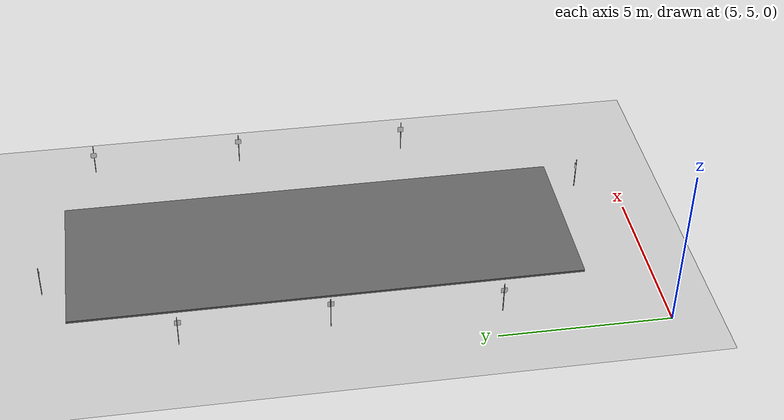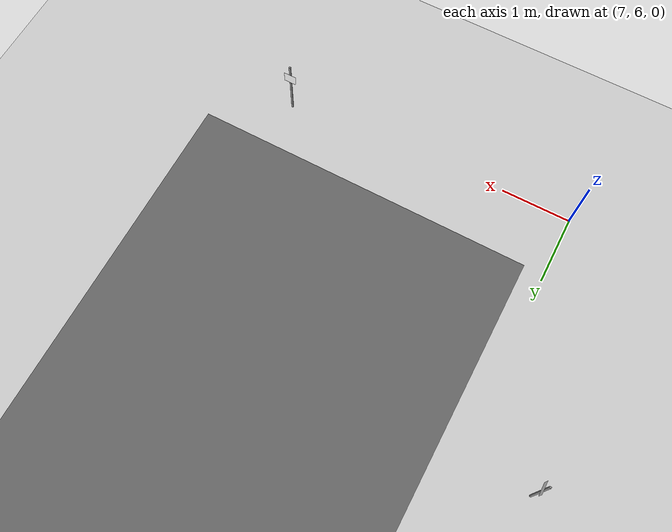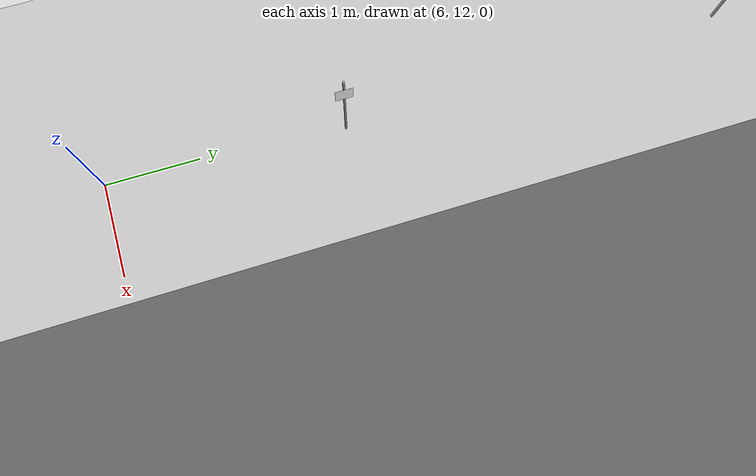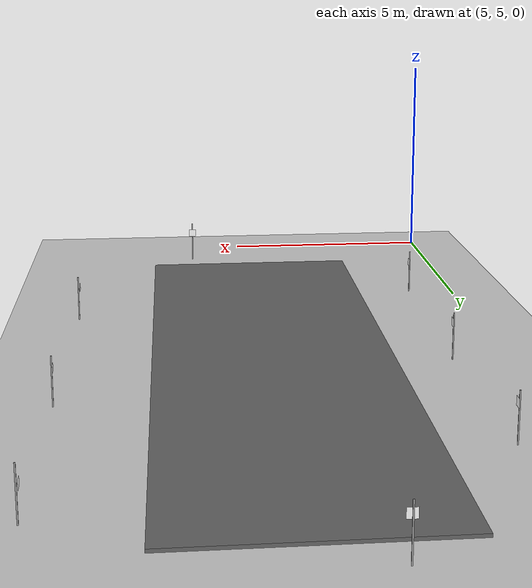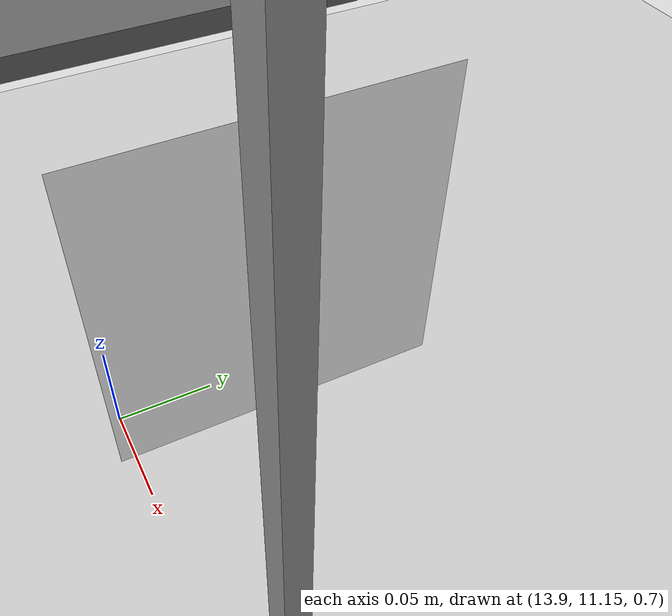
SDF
<sdf version="1.6">
 <world name="default">
  <light name="sun" type="directional">
   <pose>0 0 10 0 -0 0</pose>
   <diffuse>0.8 0.8 0.8 1</diffuse>
   <specular>0.1 0.1 0.1 1</specular>
   <attenuation>
    <range>1000</range>
    <constant>0.9</constant>
    <linear>0.01</linear>
    <quadratic>0.001</quadratic>
   </attenuation>
   <direction>-0.5 0.5 -1</direction>
  </light>
  <model name="ground_plane">
   <static>1</static>
   <link name="link">
    <collision name="collision">
     <geometry><plane><normal>0 0 1</normal><size>100 100</size></plane></geometry>
     <surface><friction><ode><mu>100</mu><mu2>50</mu2></ode></friction></surface>
    </collision>
    <visual name="visual">
     <cast_shadows>0</cast_shadows>
     <geometry><plane><normal>0 0 1</normal><size>100 100</size></plane></geometry>
     <material>
      <script><uri>file://media/materials/scripts/gazebo.material</uri><name>Gazebo/Grey</name></script>
     </material>
    </visual>
   </link>
  </model>
  <gravity>0 0 -9.8</gravity>
  <magnetic_field>6e-06 2.3e-05 -4.2e-05</magnetic_field>
  <atmosphere type="adiabatic"/>
  <physics name="default_physics" default="0" type="ode">
   <max_step_size>0.001</max_step_size>
   <real_time_factor>1</real_time_factor>
   <real_time_update_rate>1000</real_time_update_rate>
  </physics>
  <scene><ambient>0.4 0.4 0.4 1</ambient><background>0.7 0.7 0.7 1</background><shadows>1</shadows></scene>
  <spherical_coordinates>
   <surface_model>EARTH_WGS84</surface_model>
   <latitude_deg>0</latitude_deg>
   <longitude_deg>0</longitude_deg>
   <elevation>0</elevation>
   <heading_deg>0</heading_deg>
  </spherical_coordinates>
  <model name="aruco_visual_marker_0">
   <link name="marker">
    <visual name="visual">
     <geometry><box><size>0.1778 0.1778 1e-05</size></box></geometry>
     <material>
      <script>
       <uri>model://aruco_visual_marker_0/materials/scripts</uri>
       <uri>model://aruco_visual_marker_0/materials/textures</uri>
       <name>ArucoVisualMarker0/Marker</name>
      </script>
      <ambient>1 1 1 1</ambient>
      <diffuse>1 1 1 1</diffuse>
      <specular>0 0 0 1</specular>
      <emissive>1 1 1 0</emissive>
      <shader type="vertex"><normal_map>__default__</normal_map></shader>
     </material>
    </visual>
    <collision name="collision"><geometry><box><size>0.1778 0.1778 1e-05</size></box></geometry></collision>
   </link>
   <link name="marker_pad">
    <pose frame="marker">0 0 -1e-05 0 -0 0</pose>
    <visual name="visual">
     <geometry><box><size>1e-05 1e-05 1e-05</size></box></geometry>
     <material>
      <lighting>1</lighting>
      <script><uri>file://media/materials/scripts/gazebo.material</uri><name>Gazebo/White</name></script>
      <ambient>0.3 0.3 0.3 1</ambient>
      <diffuse>0.7 0.7 0.7 1</diffuse>
      <specular>0.01 0.01 0.01 1</specular>
      <emissive>1 1 1 0</emissive>
      <shader type="vertex"><normal_map>__default__</normal_map></shader>
     </material>
    </visual>
    <collision name="collision"><geometry><box><size>0.1778 0.1778 1e-05</size></box></geometry></collision>
   </link>
   <joint name="marker_JOINT_marker_pad" type="revolute">
    <parent>marker</parent>
    <child>marker_pad</child>
    <axis>
     <xyz>0 0 1</xyz>
     <limit><upper>0</upper><lower>0</lower></limit>
     <use_parent_model_frame>0</use_parent_model_frame>
     <dynamics><spring_reference>0</spring_reference><spring_stiffness>0</spring_stiffness></dynamics>
    </axis>
   </joint>
   <static>1</static>
   <pose>11.2803 6.2198 0.744645 1.57079 -1.57079 3.14159</pose>
  </model>
  <model name="aruco_visual_marker_1">
   <link name="marker">
    <visual name="visual">
     <geometry><box><size>0.1778 0.1778 1e-05</size></box></geometry>
     <material>
      <script>
       <uri>model://aruco_visual_marker_1/materials/scripts</uri>
       <uri>model://aruco_visual_marker_1/materials/textures</uri>
       <name>ArucoVisualMarker1/Marker</name>
      </script>
      <ambient>1 1 1 1</ambient>
      <diffuse>1 1 1 1</diffuse>
      <specular>0 0 0 1</specular>
      <emissive>1 1 1 0</emissive>
      <shader type="vertex"><normal_map>__default__</normal_map></shader>
     </material>
    </visual>
    <collision name="collision"><geometry><box><size>0.1778 0.1778 1e-05</size></box></geometry></collision>
   </link>
   <link name="marker_pad">
    <pose frame="marker">0 0 -1e-05 0 -0 0</pose>
    <visual name="visual">
     <geometry><box><size>1e-05 1e-05 1e-05</size></box></geometry>
     <material>
      <lighting>1</lighting>
      <script><uri>file://media/materials/scripts/gazebo.material</uri><name>Gazebo/White</name></script>
      <ambient>0.3 0.3 0.3 1</ambient>
      <diffuse>0.7 0.7 0.7 1</diffuse>
      <specular>0.01 0.01 0.01 1</specular>
      <emissive>1 1 1 0</emissive>
      <shader type="vertex"><normal_map>__default__</normal_map></shader>
     </material>
    </visual>
    <collision name="collision"><geometry><box><size>0.1778 0.1778 1e-05</size></box></geometry></collision>
   </link>
   <joint name="marker_JOINT_marker_pad" type="revolute">
    <parent>marker</parent>
    <child>marker_pad</child>
    <axis>
     <xyz>0 0 1</xyz>
     <limit><upper>0</upper><lower>0</lower></limit>
     <use_parent_model_frame>0</use_parent_model_frame>
     <dynamics><spring_reference>0</spring_reference><spring_stiffness>0</spring_stiffness></dynamics>
    </axis>
   </joint>
   <static>1</static>
   <pose>13.9216 11.2318 0.783528 -3.14159 -1.57079 -3.14159</pose>
  </model>
  <model name="aruco_visual_marker_2">
   <link name="marker">
    <visual name="visual">
     <geometry><box><size>0.1778 0.1778 1e-05</size></box></geometry>
     <material>
      <script>
       <uri>model://aruco_visual_marker_2/materials/scripts</uri>
       <uri>model://aruco_visual_marker_2/materials/textures</uri>
       <name>ArucoVisualMarker2/Marker</name>
      </script>
      <ambient>1 1 1 1</ambient>
      <diffuse>1 1 1 1</diffuse>
      <specular>0 0 0 1</specular>
      <emissive>1 1 1 0</emissive>
      <shader type="vertex"><normal_map>__default__</normal_map></shader>
     </material>
    </visual>
    <collision name="collision"><geometry><box><size>0.1778 0.1778 1e-05</size></box></geometry></collision>
   </link>
   <link name="marker_pad">
    <pose frame="marker">0 0 -1e-05 0 -0 0</pose>
    <visual name="visual">
     <geometry><box><size>1e-05 1e-05 1e-05</size></box></geometry>
     <material>
      <lighting>1</lighting>
      <script><uri>file://media/materials/scripts/gazebo.material</uri><name>Gazebo/White</name></script>
      <ambient>0.3 0.3 0.3 1</ambient>
      <diffuse>0.7 0.7 0.7 1</diffuse>
      <specular>0.01 0.01 0.01 1</specular>
      <emissive>1 1 1 0</emissive>
      <shader type="vertex"><normal_map>__default__</normal_map></shader>
     </material>
    </visual>
    <collision name="collision"><geometry><box><size>0.1778 0.1778 1e-05</size></box></geometry></collision>
   </link>
   <joint name="marker_JOINT_marker_pad" type="revolute">
    <parent>marker</parent>
    <child>marker_pad</child>
    <axis>
     <xyz>0 0 1</xyz>
     <limit><upper>0</upper><lower>0</lower></limit>
     <use_parent_model_frame>0</use_parent_model_frame>
     <dynamics><spring_reference>0</spring_reference><spring_stiffness>0</spring_stiffness></dynamics>
    </axis>
   </joint>
   <static>1</static>
   <pose>6.13172 14.532 0.803579 -3e-06 -1.57079 3.14159</pose>
  </model>
  <model name="aruco_visual_marker_3">
   <link name="marker">
    <visual name="visual">
     <geometry><box><size>0.1778 0.1778 1e-05</size></box></geometry>
     <material>
      <script>
       <uri>model://aruco_visual_marker_3/materials/scripts</uri>
       <uri>model://aruco_visual_marker_3/materials/textures</uri>
       <name>ArucoVisualMarker3/Marker</name>
      </script>
      <ambient>1 1 1 1</ambient>
      <diffuse>1 1 1 1</diffuse>
      <specular>0 0 0 1</specular>
      <emissive>1 1 1 0</emissive>
      <shader type="vertex"><normal_map>__default__</normal_map></shader>
     </material>
    </visual>
    <collision name="collision"><geometry><box><size>0.1778 0.1778 1e-05</size></box></geometry></collision>
   </link>
   <link name="marker_pad">
    <pose frame="marker">0 0 -1e-05 0 -0 0</pose>
    <visual name="visual">
     <geometry><box><size>1e-05 1e-05 1e-05</size></box></geometry>
     <material>
      <lighting>1</lighting>
      <script><uri>file://media/materials/scripts/gazebo.material</uri><name>Gazebo/White</name></script>
      <ambient>0.3 0.3 0.3 1</ambient>
      <diffuse>0.7 0.7 0.7 1</diffuse>
      <specular>0.01 0.01 0.01 1</specular>
      <emissive>1 1 1 0</emissive>
      <shader type="vertex"><normal_map>__default__</normal_map></shader>
     </material>
    </visual>
    <collision name="collision"><geometry><box><size>0.1778 0.1778 1e-05</size></box></geometry></collision>
   </link>
   <joint name="marker_JOINT_marker_pad" type="revolute">
    <parent>marker</parent>
    <child>marker_pad</child>
    <axis>
     <xyz>0 0 1</xyz>
     <limit><upper>0</upper><lower>0</lower></limit>
     <use_parent_model_frame>0</use_parent_model_frame>
     <dynamics><spring_reference>0</spring_reference><spring_stiffness>0</spring_stiffness></dynamics>
    </axis>
   </joint>
   <static>1</static>
   <pose>8.62192 22.5255 0.785654 -1.57554 -1.57079 -3.13686</pose>
  </model>
  <model name="unit_box_0_0">
   <link name="link">
    <inertial>
     <mass>1</mass>
     <inertia>
      <ixx>0.166667</ixx>
      <ixy>0</ixy>
      <ixz>0</ixz>
      <iyy>0.166667</iyy>
      <iyz>0</iyz>
      <izz>0.166667</izz>
     </inertia>
    </inertial>
    <visual name="visual">
     <geometry><box><size>0.025351 0.018729 1</size></box></geometry>
     <material>
      <script><name>Gazebo/Grey</name><uri>file://media/materials/scripts/gazebo.material</uri></script>
      <ambient>1 1 1 1</ambient>
      <diffuse>0.7 0.7 0.7 1</diffuse>
      <specular>0.01 0.01 0.01 1</specular>
      <emissive>0.7 0.7 0.7 1</emissive>
      <shader type="vertex"><normal_map>__default__</normal_map></shader>
     </material>
    </visual>
    <collision name="collision">
     <geometry><box><size>0.025351 0.018729 1</size></box></geometry>
     <surface>
      <friction>
       <ode><mu>1</mu><mu2>1</mu2><fdir1>0 0 0</fdir1><slip1>0</slip1><slip2>0</slip2></ode>
       <torsional>
        <coefficient>1</coefficient>
        <patch_radius>0</patch_radius>
        <surface_radius>0</surface_radius>
        <use_patch_radius>1</use_patch_radius>
        <ode><slip>0</slip></ode>
       </torsional>
      </friction>
      <bounce><restitution_coefficient>0</restitution_coefficient><threshold>1e+06</threshold></bounce>
      <contact>
       <collide_without_contact>0</collide_without_contact>
       <collide_without_contact_bitmask>1</collide_without_contact_bitmask>
       <collide_bitmask>1</collide_bitmask>
       <ode>
        <soft_cfm>0</soft_cfm>
        <soft_erp>0.2</soft_erp>
        <kp>1e+13</kp>
        <kd>1</kd>
        <max_vel>0.01</max_vel>
        <min_depth>0</min_depth>
       </ode>
       <bullet>
        <split_impulse>1</split_impulse>
        <split_impulse_penetration_threshold>-0.01</split_impulse_penetration_threshold>
        <soft_cfm>0</soft_cfm>
        <soft_erp>0.2</soft_erp>
        <kp>1e+13</kp>
        <kd>1</kd>
       </bullet>
      </contact>
     </surface>
    </collision>
   </link>
   <static>0</static>
   <pose>13.9634 11.2153 0.5 -6e-06 2.1e-05 0.000549</pose>
  </model>
  <model name="unit_box_0_0_clone">
   <link name="link">
    <inertial>
     <mass>1</mass>
     <inertia>
      <ixx>0.166667</ixx>
      <ixy>0</ixy>
      <ixz>0</ixz>
      <iyy>0.166667</iyy>
      <iyz>0</iyz>
      <izz>0.166667</izz>
     </inertia>
    </inertial>
    <visual name="visual">
     <geometry><box><size>0.025351 0.018729 1</size></box></geometry>
     <material>
      <script><name>Gazebo/Grey</name><uri>file://media/materials/scripts/gazebo.material</uri></script>
      <ambient>1 1 1 1</ambient>
      <diffuse>0.7 0.7 0.7 1</diffuse>
      <specular>0.01 0.01 0.01 1</specular>
      <emissive>0.7 0.7 0.7 1</emissive>
      <shader type="vertex"><normal_map>__default__</normal_map></shader>
     </material>
    </visual>
    <collision name="collision">
     <geometry><box><size>0.025351 0.018729 1</size></box></geometry>
     <surface>
      <friction>
       <ode><mu>1</mu><mu2>1</mu2><fdir1>0 0 0</fdir1><slip1>0</slip1><slip2>0</slip2></ode>
       <torsional>
        <coefficient>1</coefficient>
        <patch_radius>0</patch_radius>
        <surface_radius>0</surface_radius>
        <use_patch_radius>1</use_patch_radius>
        <ode><slip>0</slip></ode>
       </torsional>
      </friction>
      <bounce><restitution_coefficient>0</restitution_coefficient><threshold>1e+06</threshold></bounce>
      <contact>
       <collide_without_contact>0</collide_without_contact>
       <collide_without_contact_bitmask>1</collide_without_contact_bitmask>
       <collide_bitmask>1</collide_bitmask>
       <ode>
        <soft_cfm>0</soft_cfm>
        <soft_erp>0.2</soft_erp>
        <kp>1e+13</kp>
        <kd>1</kd>
        <max_vel>0.01</max_vel>
        <min_depth>0</min_depth>
       </ode>
       <bullet>
        <split_impulse>1</split_impulse>
        <split_impulse_penetration_threshold>-0.01</split_impulse_penetration_threshold>
        <soft_cfm>0</soft_cfm>
        <soft_erp>0.2</soft_erp>
        <kp>1e+13</kp>
        <kd>1</kd>
       </bullet>
      </contact>
     </surface>
    </collision>
   </link>
   <static>0</static>
   <pose>11.2798 6.20459 0.5 4e-06 1e-06 0.000466</pose>
  </model>
  <model name="unit_box_0_0_clone_0">
   <link name="link">
    <inertial>
     <mass>1</mass>
     <inertia>
      <ixx>0.166667</ixx>
      <ixy>0</ixy>
      <ixz>0</ixz>
      <iyy>0.166667</iyy>
      <iyz>0</iyz>
      <izz>0.166667</izz>
     </inertia>
    </inertial>
    <visual name="visual">
     <geometry><box><size>0.025351 0.018729 1</size></box></geometry>
     <material>
      <script><name>Gazebo/Grey</name><uri>file://media/materials/scripts/gazebo.material</uri></script>
      <ambient>1 1 1 1</ambient>
      <diffuse>0.7 0.7 0.7 1</diffuse>
      <specular>0.01 0.01 0.01 1</specular>
      <emissive>0.7 0.7 0.7 1</emissive>
      <shader type="vertex"><normal_map>__default__</normal_map></shader>
     </material>
    </visual>
    <collision name="collision">
     <geometry><box><size>0.025351 0.018729 1</size></box></geometry>
     <surface>
      <friction>
       <ode><mu>1</mu><mu2>1</mu2><fdir1>0 0 0</fdir1><slip1>0</slip1><slip2>0</slip2></ode>
       <torsional>
        <coefficient>1</coefficient>
        <patch_radius>0</patch_radius>
        <surface_radius>0</surface_radius>
        <use_patch_radius>1</use_patch_radius>
        <ode><slip>0</slip></ode>
       </torsional>
      </friction>
      <bounce><restitution_coefficient>0</restitution_coefficient><threshold>1e+06</threshold></bounce>
      <contact>
       <collide_without_contact>0</collide_without_contact>
       <collide_without_contact_bitmask>1</collide_without_contact_bitmask>
       <collide_bitmask>1</collide_bitmask>
       <ode>
        <soft_cfm>0</soft_cfm>
        <soft_erp>0.2</soft_erp>
        <kp>1e+13</kp>
        <kd>1</kd>
        <max_vel>0.01</max_vel>
        <min_depth>0</min_depth>
       </ode>
       <bullet>
        <split_impulse>1</split_impulse>
        <split_impulse_penetration_threshold>-0.01</split_impulse_penetration_threshold>
        <soft_cfm>0</soft_cfm>
        <soft_erp>0.2</soft_erp>
        <kp>1e+13</kp>
        <kd>1</kd>
       </bullet>
      </contact>
     </surface>
    </collision>
   </link>
   <static>0</static>
   <pose>6.10904 14.5377 0.5 0 -1e-06 0.000144</pose>
  </model>
  <model name="unit_box_0_0_clone_1">
   <link name="link">
    <inertial>
     <mass>1</mass>
     <inertia>
      <ixx>0.166667</ixx>
      <ixy>0</ixy>
      <ixz>0</ixz>
      <iyy>0.166667</iyy>
      <iyz>0</iyz>
      <izz>0.166667</izz>
     </inertia>
    </inertial>
    <visual name="visual">
     <geometry><box><size>0.025351 0.018729 1</size></box></geometry>
     <material>
      <script><name>Gazebo/Grey</name><uri>file://media/materials/scripts/gazebo.material</uri></script>
      <ambient>1 1 1 1</ambient>
      <diffuse>0.7 0.7 0.7 1</diffuse>
      <specular>0.01 0.01 0.01 1</specular>
      <emissive>0.7 0.7 0.7 1</emissive>
      <shader type="vertex"><normal_map>__default__</normal_map></shader>
     </material>
    </visual>
    <collision name="collision">
     <geometry><box><size>0.025351 0.018729 1</size></box></geometry>
     <surface>
      <friction>
       <ode><mu>1</mu><mu2>1</mu2><fdir1>0 0 0</fdir1><slip1>0</slip1><slip2>0</slip2></ode>
       <torsional>
        <coefficient>1</coefficient>
        <patch_radius>0</patch_radius>
        <surface_radius>0</surface_radius>
        <use_patch_radius>1</use_patch_radius>
        <ode><slip>0</slip></ode>
       </torsional>
      </friction>
      <bounce><restitution_coefficient>0</restitution_coefficient><threshold>1e+06</threshold></bounce>
      <contact>
       <collide_without_contact>0</collide_without_contact>
       <collide_without_contact_bitmask>1</collide_without_contact_bitmask>
       <collide_bitmask>1</collide_bitmask>
       <ode>
        <soft_cfm>0</soft_cfm>
        <soft_erp>0.2</soft_erp>
        <kp>1e+13</kp>
        <kd>1</kd>
        <max_vel>0.01</max_vel>
        <min_depth>0</min_depth>
       </ode>
       <bullet>
        <split_impulse>1</split_impulse>
        <split_impulse_penetration_threshold>-0.01</split_impulse_penetration_threshold>
        <soft_cfm>0</soft_cfm>
        <soft_erp>0.2</soft_erp>
        <kp>1e+13</kp>
        <kd>1</kd>
       </bullet>
      </contact>
     </surface>
    </collision>
   </link>
   <static>0</static>
   <pose>8.61421 22.5386 0.5 1e-05 -2.2e-05 0.000478</pose>
  </model>
  <model name="unit_box_0_1_0">
   <link name="unit_box_0_1_0::link">
    <inertial>
     <mass>1</mass>
     <inertia>
      <ixx>0.166667</ixx>
      <ixy>0</ixy>
      <ixz>0</ixz>
      <iyy>0.166667</iyy>
      <iyz>0</iyz>
      <izz>0.166667</izz>
     </inertia>
    </inertial>
    <kinematic>1</kinematic>
    <visual name="ModelPreview_3::link::visual_1">
     <geometry><box><size>4.98982 14.9433 0.064772</size></box></geometry>
     <material>
      <script>
       <uri>model://materials/chapa_acero/scripts</uri>
       <uri>model://materials/chapa_acero/textures</uri>
       <name>materials/chapa_acero</name>
      </script>
      <ambient>0.4 0.4 0.4 1</ambient>
      <diffuse>0.4 0.4 0.4 1</diffuse>
      <specular>0 0 0 1</specular>
      <emissive>0.4 0.4 0.4 0</emissive>
      <shader type="vertex"><normal_map>__default__</normal_map></shader>
     </material>
    </visual>
    <visual name="visual">
     <geometry><box><size>4.98982 14.9433 0.064772</size></box></geometry>
     <material>
      <script><name>Gazebo/Grey</name><uri>file://media/materials/scripts/gazebo.material</uri></script>
      <ambient>0.3 0 0 1</ambient>
      <diffuse>0.1 0.1 0.1 1</diffuse>
      <specular>0.3 0 0 1</specular>
      <emissive>0 0 0 1</emissive>
      <shader type="vertex"><normal_map>__default__</normal_map></shader>
     </material>
    </visual>
    <collision name="collision">
     <geometry><box><size>4.98982 14.9433 0.064772</size></box></geometry>
     <surface>
      <friction>
       <ode><mu>1</mu><mu2>1</mu2><fdir1>0 0 0</fdir1><slip1>0</slip1><slip2>0</slip2></ode>
       <torsional>
        <coefficient>1</coefficient>
        <patch_radius>0</patch_radius>
        <surface_radius>0</surface_radius>
        <use_patch_radius>1</use_patch_radius>
        <ode><slip>0</slip></ode>
       </torsional>
      </friction>
      <bounce><restitution_coefficient>0</restitution_coefficient><threshold>1e+06</threshold></bounce>
      <contact>
       <collide_without_contact>0</collide_without_contact>
       <collide_without_contact_bitmask>1</collide_without_contact_bitmask>
       <collide_bitmask>1</collide_bitmask>
       <ode>
        <soft_cfm>0</soft_cfm>
        <soft_erp>0.2</soft_erp>
        <kp>1e+13</kp>
        <kd>1</kd>
        <max_vel>0.01</max_vel>
        <min_depth>0</min_depth>
       </ode>
       <bullet>
        <split_impulse>1</split_impulse>
        <split_impulse_penetration_threshold>-0.01</split_impulse_penetration_threshold>
        <soft_cfm>0</soft_cfm>
        <soft_erp>0.2</soft_erp>
        <kp>1e+13</kp>
        <kd>1</kd>
       </bullet>
      </contact>
     </surface>
    </collision>
   </link>
   <static>0</static>
   <pose>9.78691 14.3968 0.032364 0 9e-06 -1e-05</pose>
  </model>
  <model name="aruco_visual_marker_4">
   <link name="marker">
    <visual name="visual">
     <geometry><box><size>0.1778 0.1778 1e-05</size></box></geometry>
     <material>
      <script>
       <uri>model://aruco_visual_marker_4/materials/scripts</uri>
       <uri>model://aruco_visual_marker_4/materials/textures</uri>
       <name>ArucoVisualMarker4/Marker</name>
      </script>
      <ambient>1 1 1 1</ambient>
      <diffuse>1 1 1 1</diffuse>
      <specular>0 0 0 1</specular>
      <emissive>1 1 1 0</emissive>
      <shader type="vertex"><normal_map>__default__</normal_map></shader>
     </material>
    </visual>
    <collision name="collision"><geometry><box><size>0.1778 0.1778 1e-05</size></box></geometry></collision>
   </link>
   <link name="marker_pad">
    <pose frame="marker">0 0 -1e-05 0 -0 0</pose>
    <visual name="visual">
     <geometry><box><size>1e-05 1e-05 1e-05</size></box></geometry>
     <material>
      <lighting>1</lighting>
      <script><uri>file://media/materials/scripts/gazebo.material</uri><name>Gazebo/White</name></script>
      <ambient>0.3 0.3 0.3 1</ambient>
      <diffuse>0.7 0.7 0.7 1</diffuse>
      <specular>0.01 0.01 0.01 1</specular>
      <emissive>1 1 1 0</emissive>
      <shader type="vertex"><normal_map>__default__</normal_map></shader>
     </material>
    </visual>
    <collision name="collision"><geometry><box><size>0.1778 0.1778 1e-05</size></box></geometry></collision>
   </link>
   <joint name="marker_JOINT_marker_pad" type="revolute">
    <parent>marker</parent>
    <child>marker_pad</child>
    <axis>
     <xyz>0 0 1</xyz>
     <limit><upper>0</upper><lower>0</lower></limit>
     <use_parent_model_frame>0</use_parent_model_frame>
     <dynamics><spring_reference>0</spring_reference><spring_stiffness>0</spring_stiffness></dynamics>
    </axis>
   </joint>
   <static>1</static>
   <pose>6.03069 18.7703 0.777042 -3e-06 -1.57079 3.14159</pose>
  </model>
  <model name="aruco_visual_marker_5">
   <link name="marker">
    <visual name="visual">
     <geometry><box><size>0.1778 0.1778 1e-05</size></box></geometry>
     <material>
      <script>
       <uri>model://aruco_visual_marker_5/materials/scripts</uri>
       <uri>model://aruco_visual_marker_5/materials/textures</uri>
       <name>ArucoVisualMarker5/Marker</name>
      </script>
      <ambient>1 1 1 1</ambient>
      <diffuse>1 1 1 1</diffuse>
      <specular>0 0 0 1</specular>
      <emissive>1 1 1 0</emissive>
      <shader type="vertex"><normal_map>__default__</normal_map></shader>
     </material>
    </visual>
    <collision name="collision"><geometry><box><size>0.1778 0.1778 1e-05</size></box></geometry></collision>
   </link>
   <link name="marker_pad">
    <pose frame="marker">0 0 -1e-05 0 -0 0</pose>
    <visual name="visual">
     <geometry><box><size>1e-05 1e-05 1e-05</size></box></geometry>
     <material>
      <lighting>1</lighting>
      <script><uri>file://media/materials/scripts/gazebo.material</uri><name>Gazebo/White</name></script>
      <ambient>0.3 0.3 0.3 1</ambient>
      <diffuse>0.7 0.7 0.7 1</diffuse>
      <specular>0.01 0.01 0.01 1</specular>
      <emissive>1 1 1 0</emissive>
      <shader type="vertex"><normal_map>__default__</normal_map></shader>
     </material>
    </visual>
    <collision name="collision"><geometry><box><size>0.1778 0.1778 1e-05</size></box></geometry></collision>
   </link>
   <joint name="marker_JOINT_marker_pad" type="revolute">
    <parent>marker</parent>
    <child>marker_pad</child>
    <axis>
     <xyz>0 0 1</xyz>
     <limit><upper>0</upper><lower>0</lower></limit>
     <use_parent_model_frame>0</use_parent_model_frame>
     <dynamics><spring_reference>0</spring_reference><spring_stiffness>0</spring_stiffness></dynamics>
    </axis>
   </joint>
   <static>1</static>
   <pose>14.1184 20.897 0.677507 3.14159 -1.57079 3.14159</pose>
  </model>
  <model name="aruco_visual_marker_6">
   <link name="marker">
    <visual name="visual">
     <geometry><box><size>0.1778 0.1778 1e-05</size></box></geometry>
     <material>
      <script>
       <uri>model://aruco_visual_marker_6/materials/scripts</uri>
       <uri>model://aruco_visual_marker_6/materials/textures</uri>
       <name>ArucoVisualMarker6/Marker</name>
      </script>
      <ambient>1 1 1 1</ambient>
      <diffuse>1 1 1 1</diffuse>
      <specular>0 0 0 1</specular>
      <emissive>1 1 1 0</emissive>
      <shader type="vertex"><normal_map>__default__</normal_map></shader>
     </material>
    </visual>
    <collision name="collision"><geometry><box><size>0.1778 0.1778 1e-05</size></box></geometry></collision>
   </link>
   <link name="marker_pad">
    <pose frame="marker">0 0 -1e-05 0 -0 0</pose>
    <visual name="visual">
     <geometry><box><size>1e-05 1e-05 1e-05</size></box></geometry>
     <material>
      <lighting>1</lighting>
      <script><uri>file://media/materials/scripts/gazebo.material</uri><name>Gazebo/White</name></script>
      <ambient>0.3 0.3 0.3 1</ambient>
      <diffuse>0.7 0.7 0.7 1</diffuse>
      <specular>0.01 0.01 0.01 1</specular>
      <emissive>1 1 1 0</emissive>
      <shader type="vertex"><normal_map>__default__</normal_map></shader>
     </material>
    </visual>
    <collision name="collision"><geometry><box><size>0.1778 0.1778 1e-05</size></box></geometry></collision>
   </link>
   <joint name="marker_JOINT_marker_pad" type="revolute">
    <parent>marker</parent>
    <child>marker_pad</child>
    <axis>
     <xyz>0 0 1</xyz>
     <limit><upper>0</upper><lower>0</lower></limit>
     <use_parent_model_frame>0</use_parent_model_frame>
     <dynamics><spring_reference>0</spring_reference><spring_stiffness>0</spring_stiffness></dynamics>
    </axis>
   </joint>
   <static>1</static>
   <pose>6.04652 9.64366 0.739917 -3e-06 -1.57079 3.14159</pose>
  </model>
  <model name="aruco_visual_marker_7">
   <link name="marker">
    <visual name="visual">
     <geometry><box><size>0.1778 0.1778 1e-05</size></box></geometry>
     <material>
      <script>
       <uri>model://aruco_visual_marker_7/materials/scripts</uri>
       <uri>model://aruco_visual_marker_7/materials/textures</uri>
       <name>ArucoVisualMarker7/Marker</name>
      </script>
      <ambient>1 1 1 1</ambient>
      <diffuse>1 1 1 1</diffuse>
      <specular>0 0 0 1</specular>
      <emissive>1 1 1 0</emissive>
      <shader type="vertex"><normal_map>__default__</normal_map></shader>
     </material>
    </visual>
    <collision name="collision"><geometry><box><size>0.1778 0.1778 1e-05</size></box></geometry></collision>
   </link>
   <link name="marker_pad">
    <pose frame="marker">0 0 -1e-05 0 -0 0</pose>
    <visual name="visual">
     <geometry><box><size>1e-05 1e-05 1e-05</size></box></geometry>
     <material>
      <lighting>1</lighting>
      <script><uri>file://media/materials/scripts/gazebo.material</uri><name>Gazebo/White</name></script>
      <ambient>0.3 0.3 0.3 1</ambient>
      <diffuse>0.7 0.7 0.7 1</diffuse>
      <specular>0.01 0.01 0.01 1</specular>
      <emissive>1 1 1 0</emissive>
      <shader type="vertex"><normal_map>__default__</normal_map></shader>
     </material>
    </visual>
    <collision name="collision"><geometry><box><size>0.1778 0.1778 1e-05</size></box></geometry></collision>
   </link>
   <joint name="marker_JOINT_marker_pad" type="revolute">
    <parent>marker</parent>
    <child>marker_pad</child>
    <axis>
     <xyz>0 0 1</xyz>
     <limit><upper>0</upper><lower>0</lower></limit>
     <use_parent_model_frame>0</use_parent_model_frame>
     <dynamics><spring_reference>0</spring_reference><spring_stiffness>0</spring_stiffness></dynamics>
    </axis>
   </joint>
   <static>1</static>
   <pose>14.0493 16.3849 0.769285 3.14159 -1.57079 3.14159</pose>
  </model>
  <model name="unit_box_0_0_clone_1_clone">
   <link name="link">
    <inertial>
     <mass>1</mass>
     <inertia>
      <ixx>0.166667</ixx>
      <ixy>0</ixy>
      <ixz>0</ixz>
      <iyy>0.166667</iyy>
      <iyz>0</iyz>
      <izz>0.166667</izz>
     </inertia>
    </inertial>
    <visual name="visual">
     <geometry><box><size>0.025351 0.018729 1</size></box></geometry>
     <material>
      <script><name>Gazebo/Grey</name><uri>file://media/materials/scripts/gazebo.material</uri></script>
      <ambient>1 1 1 1</ambient>
      <diffuse>0.7 0.7 0.7 1</diffuse>
      <specular>0.01 0.01 0.01 1</specular>
      <emissive>0.7 0.7 0.7 1</emissive>
      <shader type="vertex"><normal_map>__default__</normal_map></shader>
     </material>
    </visual>
    <collision name="collision">
     <geometry><box><size>0.025351 0.018729 1</size></box></geometry>
     <surface>
      <friction>
       <ode><mu>1</mu><mu2>1</mu2><fdir1>0 0 0</fdir1><slip1>0</slip1><slip2>0</slip2></ode>
       <torsional>
        <coefficient>1</coefficient>
        <patch_radius>0</patch_radius>
        <surface_radius>0</surface_radius>
        <use_patch_radius>1</use_patch_radius>
        <ode><slip>0</slip></ode>
       </torsional>
      </friction>
      <bounce><restitution_coefficient>0</restitution_coefficient><threshold>1e+06</threshold></bounce>
      <contact>
       <collide_without_contact>0</collide_without_contact>
       <collide_without_contact_bitmask>1</collide_without_contact_bitmask>
       <collide_bitmask>1</collide_bitmask>
       <ode>
        <soft_cfm>0</soft_cfm>
        <soft_erp>0.2</soft_erp>
        <kp>1e+13</kp>
        <kd>1</kd>
        <max_vel>0.01</max_vel>
        <min_depth>0</min_depth>
       </ode>
       <bullet>
        <split_impulse>1</split_impulse>
        <split_impulse_penetration_threshold>-0.01</split_impulse_penetration_threshold>
        <soft_cfm>0</soft_cfm>
        <soft_erp>0.2</soft_erp>
        <kp>1e+13</kp>
        <kd>1</kd>
       </bullet>
      </contact>
     </surface>
    </collision>
   </link>
   <static>0</static>
   <pose>6.00383 18.786 0.5 -2e-06 -4e-06 0.000498</pose>
  </model>
  <model name="unit_box_0_0_clone_1_clone_0">
   <link name="link">
    <inertial>
     <mass>1</mass>
     <inertia>
      <ixx>0.166667</ixx>
      <ixy>0</ixy>
      <ixz>0</ixz>
      <iyy>0.166667</iyy>
      <iyz>0</iyz>
      <izz>0.166667</izz>
     </inertia>
    </inertial>
    <visual name="visual">
     <geometry><box><size>0.025351 0.018729 1</size></box></geometry>
     <material>
      <script><name>Gazebo/Grey</name><uri>file://media/materials/scripts/gazebo.material</uri></script>
      <ambient>1 1 1 1</ambient>
      <diffuse>0.7 0.7 0.7 1</diffuse>
      <specular>0.01 0.01 0.01 1</specular>
      <emissive>0.7 0.7 0.7 1</emissive>
      <shader type="vertex"><normal_map>__default__</normal_map></shader>
     </material>
    </visual>
    <collision name="collision">
     <geometry><box><size>0.025351 0.018729 1</size></box></geometry>
     <surface>
      <friction>
       <ode><mu>1</mu><mu2>1</mu2><fdir1>0 0 0</fdir1><slip1>0</slip1><slip2>0</slip2></ode>
       <torsional>
        <coefficient>1</coefficient>
        <patch_radius>0</patch_radius>
        <surface_radius>0</surface_radius>
        <use_patch_radius>1</use_patch_radius>
        <ode><slip>0</slip></ode>
       </torsional>
      </friction>
      <bounce><restitution_coefficient>0</restitution_coefficient><threshold>1e+06</threshold></bounce>
      <contact>
       <collide_without_contact>0</collide_without_contact>
       <collide_without_contact_bitmask>1</collide_without_contact_bitmask>
       <collide_bitmask>1</collide_bitmask>
       <ode>
        <soft_cfm>0</soft_cfm>
        <soft_erp>0.2</soft_erp>
        <kp>1e+13</kp>
        <kd>1</kd>
        <max_vel>0.01</max_vel>
        <min_depth>0</min_depth>
       </ode>
       <bullet>
        <split_impulse>1</split_impulse>
        <split_impulse_penetration_threshold>-0.01</split_impulse_penetration_threshold>
        <soft_cfm>0</soft_cfm>
        <soft_erp>0.2</soft_erp>
        <kp>1e+13</kp>
        <kd>1</kd>
       </bullet>
      </contact>
     </surface>
    </collision>
   </link>
   <static>0</static>
   <pose>6.02471 9.64813 0.5 -2e-06 -0 0.000494</pose>
  </model>
  <model name="unit_box_0_0_clone_1_clone_1">
   <link name="link">
    <inertial>
     <mass>1</mass>
     <inertia>
      <ixx>0.166667</ixx>
      <ixy>0</ixy>
      <ixz>0</ixz>
      <iyy>0.166667</iyy>
      <iyz>0</iyz>
      <izz>0.166667</izz>
     </inertia>
    </inertial>
    <visual name="visual">
     <geometry><box><size>0.025351 0.018729 1</size></box></geometry>
     <material>
      <script><name>Gazebo/Grey</name><uri>file://media/materials/scripts/gazebo.material</uri></script>
      <ambient>1 1 1 1</ambient>
      <diffuse>0.7 0.7 0.7 1</diffuse>
      <specular>0.01 0.01 0.01 1</specular>
      <emissive>0.7 0.7 0.7 1</emissive>
      <shader type="vertex"><normal_map>__default__</normal_map></shader>
     </material>
    </visual>
    <collision name="collision">
     <geometry><box><size>0.025351 0.018729 1</size></box></geometry>
     <surface>
      <friction>
       <ode><mu>1</mu><mu2>1</mu2><fdir1>0 0 0</fdir1><slip1>0</slip1><slip2>0</slip2></ode>
       <torsional>
        <coefficient>1</coefficient>
        <patch_radius>0</patch_radius>
        <surface_radius>0</surface_radius>
        <use_patch_radius>1</use_patch_radius>
        <ode><slip>0</slip></ode>
       </torsional>
      </friction>
      <bounce><restitution_coefficient>0</restitution_coefficient><threshold>1e+06</threshold></bounce>
      <contact>
       <collide_without_contact>0</collide_without_contact>
       <collide_without_contact_bitmask>1</collide_without_contact_bitmask>
       <collide_bitmask>1</collide_bitmask>
       <ode>
        <soft_cfm>0</soft_cfm>
        <soft_erp>0.2</soft_erp>
        <kp>1e+13</kp>
        <kd>1</kd>
        <max_vel>0.01</max_vel>
        <min_depth>0</min_depth>
       </ode>
       <bullet>
        <split_impulse>1</split_impulse>
        <split_impulse_penetration_threshold>-0.01</split_impulse_penetration_threshold>
        <soft_cfm>0</soft_cfm>
        <soft_erp>0.2</soft_erp>
        <kp>1e+13</kp>
        <kd>1</kd>
       </bullet>
      </contact>
     </surface>
    </collision>
   </link>
   <static>0</static>
   <pose>14.0727 16.3756 0.5 0 3e-06 0.000481</pose>
  </model>
  <model name="unit_box_0_0_clone_1_clone_2">
   <link name="link">
    <inertial>
     <mass>1</mass>
     <inertia>
      <ixx>0.166667</ixx>
      <ixy>0</ixy>
      <ixz>0</ixz>
      <iyy>0.166667</iyy>
      <iyz>0</iyz>
      <izz>0.166667</izz>
     </inertia>
    </inertial>
    <visual name="visual">
     <geometry><box><size>0.025351 0.018729 1</size></box></geometry>
     <material>
      <script><name>Gazebo/Grey</name><uri>file://media/materials/scripts/gazebo.material</uri></script>
      <ambient>1 1 1 1</ambient>
      <diffuse>0.7 0.7 0.7 1</diffuse>
      <specular>0.01 0.01 0.01 1</specular>
      <emissive>0.7 0.7 0.7 1</emissive>
      <shader type="vertex"><normal_map>__default__</normal_map></shader>
     </material>
    </visual>
    <collision name="collision">
     <geometry><box><size>0.025351 0.018729 1</size></box></geometry>
     <surface>
      <friction>
       <ode><mu>1</mu><mu2>1</mu2><fdir1>0 0 0</fdir1><slip1>0</slip1><slip2>0</slip2></ode>
       <torsional>
        <coefficient>1</coefficient>
        <patch_radius>0</patch_radius>
        <surface_radius>0</surface_radius>
        <use_patch_radius>1</use_patch_radius>
        <ode><slip>0</slip></ode>
       </torsional>
      </friction>
      <bounce><restitution_coefficient>0</restitution_coefficient><threshold>1e+06</threshold></bounce>
      <contact>
       <collide_without_contact>0</collide_without_contact>
       <collide_without_contact_bitmask>1</collide_without_contact_bitmask>
       <collide_bitmask>1</collide_bitmask>
       <ode>
        <soft_cfm>0</soft_cfm>
        <soft_erp>0.2</soft_erp>
        <kp>1e+13</kp>
        <kd>1</kd>
        <max_vel>0.01</max_vel>
        <min_depth>0</min_depth>
       </ode>
       <bullet>
        <split_impulse>1</split_impulse>
        <split_impulse_penetration_threshold>-0.01</split_impulse_penetration_threshold>
        <soft_cfm>0</soft_cfm>
        <soft_erp>0.2</soft_erp>
        <kp>1e+13</kp>
        <kd>1</kd>
       </bullet>
      </contact>
     </surface>
    </collision>
   </link>
   <static>0</static>
   <pose>14.1599 20.8892 0.5 -3e-06 1e-06 0.000358</pose>
  </model>
 </world>
</sdf>
